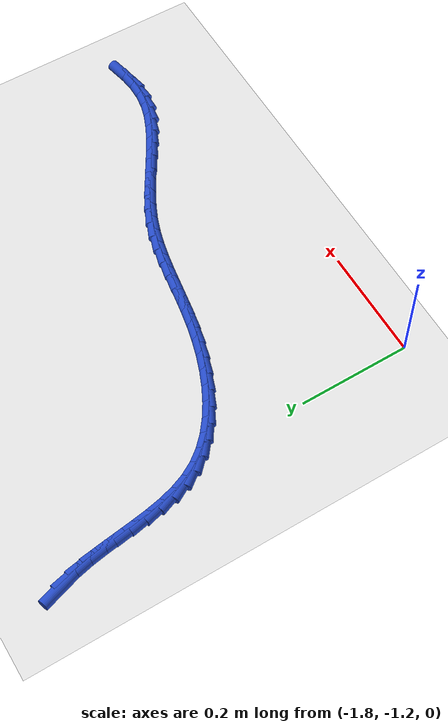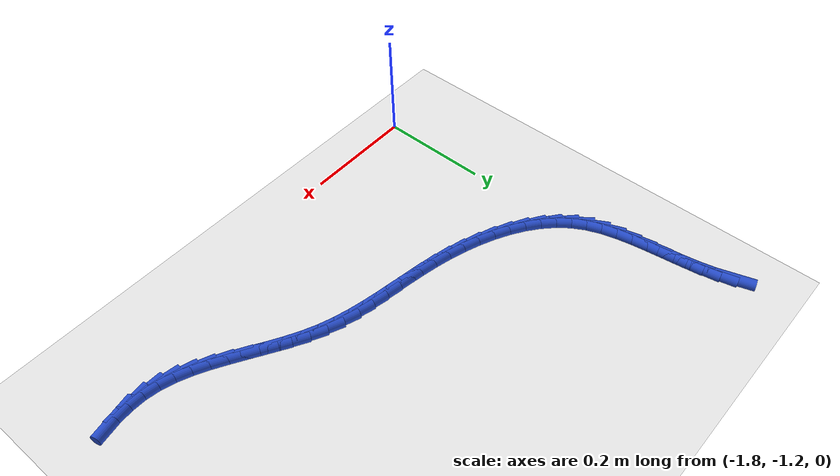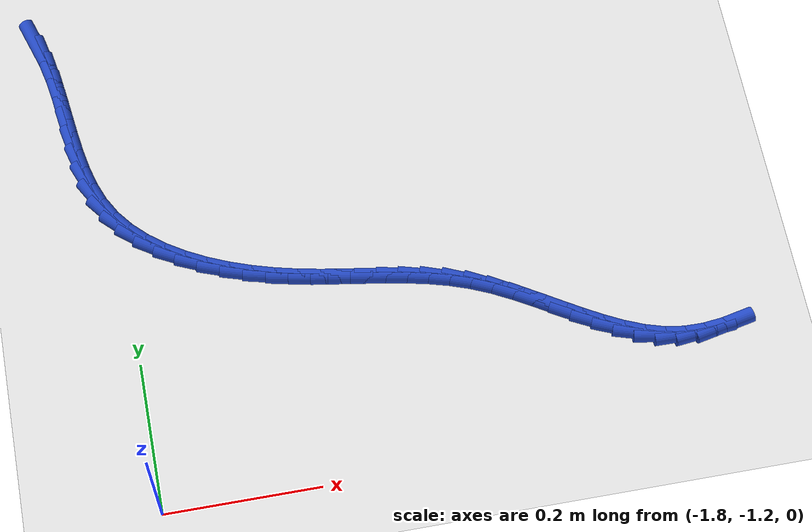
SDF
<sdf version="1.6">
 <world name="default">
  <model name="ground_plane">
   <static>1</static>
   <link name="link">
    <collision name="collision">
     <geometry><plane><normal>0 0 1</normal><size>100 100</size></plane></geometry>
     <surface><friction><ode><mu>100</mu><mu2>50</mu2></ode></friction></surface>
    </collision>
    <visual name="visual">
     <cast_shadows>0</cast_shadows>
     <geometry><plane><normal>0 0 1</normal><size>100 100</size></plane></geometry>
     <material>
      <script><uri>file://media/materials/scripts/gazebo.material</uri><name>Gazebo/WhiteGlow</name></script>
     </material>
    </visual>
   </link>
  </model>
  <model name="line">
   <link name="link_141">
    <pose>-1.8753388666711641 -0.521191746620722 0.01 0 1.57 -1.2629739022004454</pose>
    <collision name="collision">
     <geometry><cylinder><radius>0.01</radius><length>0.08</length></cylinder></geometry>
    </collision>
    <visual name="visual">
     <material>
      <script><name>Gazebo/Blue</name><uri>file://media/materials/scripts/gazebo.material</uri></script>
     </material>
     <geometry><cylinder><radius>0.01</radius><length>0.08</length></cylinder></geometry>
    </visual>
   </link>
   <link name="link_142">
    <pose>-1.8668825444255006 -0.5477899638681992 0.01 0 1.57 -1.3483405853613528</pose>
    <collision name="collision">
     <geometry><cylinder><radius>0.01</radius><length>0.08</length></cylinder></geometry>
    </collision>
    <visual name="visual">
     <material>
      <script><name>Gazebo/Blue</name><uri>file://media/materials/scripts/gazebo.material</uri></script>
     </material>
     <geometry><cylinder><radius>0.01</radius><length>0.08</length></cylinder></geometry>
    </visual>
   </link>
   <link name="link_143">
    <pose>-1.8606122428354461 -0.575510205309417 0.01 0 1.57 -1.40513259338551</pose>
    <collision name="collision">
     <geometry><cylinder><radius>0.01</radius><length>0.08</length></cylinder></geometry>
    </collision>
    <visual name="visual">
     <material>
      <script><name>Gazebo/Blue</name><uri>file://media/materials/scripts/gazebo.material</uri></script>
     </material>
     <geometry><cylinder><radius>0.01</radius><length>0.08</length></cylinder></geometry>
    </visual>
   </link>
   <link name="link_144">
    <pose>-1.8558516066946575 -0.6039835778646141 0.01 0 1.57 -1.4354799581638917</pose>
    <collision name="collision">
     <geometry><cylinder><radius>0.01</radius><length>0.08</length></cylinder></geometry>
    </collision>
    <visual name="visual">
     <material>
      <script><name>Gazebo/Blue</name><uri>file://media/materials/scripts/gazebo.material</uri></script>
     </material>
     <geometry><cylinder><radius>0.01</radius><length>0.08</length></cylinder></geometry>
    </visual>
   </link>
   <link name="link_145">
    <pose>-1.8519228020472938 -0.6328403664341098 0.01 0 1.57 -1.4407841777287467</pose>
    <collision name="collision">
     <geometry><cylinder><radius>0.01</radius><length>0.08</length></cylinder></geometry>
    </collision>
    <visual name="visual">
     <material>
      <script><name>Gazebo/Blue</name><uri>file://media/materials/scripts/gazebo.material</uri></script>
     </material>
     <geometry><cylinder><radius>0.01</radius><length>0.08</length></cylinder></geometry>
    </visual>
   </link>
   <link name="link_146">
    <pose>-1.848147994937515 -0.6617108559182231 0.01 0 1.57 -1.4211700017675006</pose>
    <collision name="collision">
     <geometry><cylinder><radius>0.01</radius><length>0.08</length></cylinder></geometry>
    </collision>
    <visual name="visual">
     <material>
      <script><name>Gazebo/Blue</name><uri>file://media/materials/scripts/gazebo.material</uri></script>
     </material>
     <geometry><cylinder><radius>0.01</radius><length>0.08</length></cylinder></geometry>
    </visual>
   </link>
   <link name="link_147">
    <pose>-1.8438493514094796 -0.6902253312172739 0.01 0 1.57 -1.3753889148628426</pose>
    <collision name="collision">
     <geometry><cylinder><radius>0.01</radius><length>0.08</length></cylinder></geometry>
    </collision>
    <visual name="visual">
     <material>
      <script><name>Gazebo/Blue</name><uri>file://media/materials/scripts/gazebo.material</uri></script>
     </material>
     <geometry><cylinder><radius>0.01</radius><length>0.08</length></cylinder></geometry>
    </visual>
   </link>
   <link name="link_148">
    <pose>-1.8383490375073477 -0.7180140772315795 0.01 0 1.57 -1.3010667277264085</pose>
    <collision name="collision">
     <geometry><cylinder><radius>0.01</radius><length>0.08</length></cylinder></geometry>
    </collision>
    <visual name="visual">
     <material>
      <script><name>Gazebo/Blue</name><uri>file://media/materials/scripts/gazebo.material</uri></script>
     </material>
     <geometry><cylinder><radius>0.01</radius><length>0.08</length></cylinder></geometry>
    </visual>
   </link>
   <link name="link_149">
    <pose>-1.8309692192752787 -0.7447073788614601 0.01 0 1.57 -1.1955667666219372</pose>
    <collision name="collision">
     <geometry><cylinder><radius>0.01</radius><length>0.08</length></cylinder></geometry>
    </collision>
    <visual name="visual">
     <material>
      <script><name>Gazebo/Blue</name><uri>file://media/materials/scripts/gazebo.material</uri></script>
     </material>
     <geometry><cylinder><radius>0.01</radius><length>0.08</length></cylinder></geometry>
    </visual>
   </link>
   <link name="link_150">
    <pose>-1.821032062757431 -0.7699355210072341 0.01 0 1.57 -1.0583558536519473</pose>
    <collision name="collision">
     <geometry><cylinder><radius>0.01</radius><length>0.08</length></cylinder></geometry>
    </collision>
    <visual name="visual">
     <material>
      <script><name>Gazebo/Blue</name><uri>file://media/materials/scripts/gazebo.material</uri></script>
     </material>
     <geometry><cylinder><radius>0.01</radius><length>0.08</length></cylinder></geometry>
    </visual>
   </link>
   <link name="link_151">
    <pose>-1.807869668354182 -0.7933325399651864 0.01 0 1.57 -0.9100896663687043</pose>
    <collision name="collision">
     <geometry><cylinder><radius>0.01</radius><length>0.08</length></cylinder></geometry>
    </collision>
    <visual name="visual">
     <material>
      <script><name>Gazebo/Blue</name><uri>file://media/materials/scripts/gazebo.material</uri></script>
     </material>
     <geometry><cylinder><radius>0.01</radius><length>0.08</length></cylinder></geometry>
    </visual>
   </link>
   <link name="link_152">
    <pose>-1.791261096418293 -0.8147012523456403 0.01 0 1.57 -0.7782124253226701</pose>
    <collision name="collision">
     <geometry><cylinder><radius>0.01</radius><length>0.08</length></cylinder></geometry>
    </collision>
    <visual name="visual">
     <material>
      <script><name>Gazebo/Blue</name><uri>file://media/materials/scripts/gazebo.material</uri></script>
     </material>
     <geometry><cylinder><radius>0.01</radius><length>0.08</length></cylinder></geometry>
    </visual>
   </link>
   <link name="link_153">
    <pose>-1.7716038468602682 -0.8340780089317515 0.01 0 1.57 -0.6644644143110363</pose>
    <collision name="collision">
     <geometry><cylinder><radius>0.01</radius><length>0.08</length></cylinder></geometry>
    </collision>
    <visual name="visual">
     <material>
      <script><name>Gazebo/Blue</name><uri>file://media/materials/scripts/gazebo.material</uri></script>
     </material>
     <geometry><cylinder><radius>0.01</radius><length>0.08</length></cylinder></geometry>
    </visual>
   </link>
   <link name="link_154">
    <pose>-1.7493407875839946 -0.851516292296962 0.01 0 1.57 -0.567005233301966</pose>
    <collision name="collision">
     <geometry><cylinder><radius>0.01</radius><length>0.08</length></cylinder></geometry>
    </collision>
    <visual name="visual">
     <material>
      <script><name>Gazebo/Blue</name><uri>file://media/materials/scripts/gazebo.material</uri></script>
     </material>
     <geometry><cylinder><radius>0.01</radius><length>0.08</length></cylinder></geometry>
    </visual>
   </link>
   <link name="link_155">
    <pose>-1.7249147864933554 -0.8670695850147132 0.01 0 1.57 -0.4832999331994907</pose>
    <collision name="collision">
     <geometry><cylinder><radius>0.01</radius><length>0.08</length></cylinder></geometry>
    </collision>
    <visual name="visual">
     <material>
      <script><name>Gazebo/Blue</name><uri>file://media/materials/scripts/gazebo.material</uri></script>
     </material>
     <geometry><cylinder><radius>0.01</radius><length>0.08</length></cylinder></geometry>
    </visual>
   </link>
   <link name="link_156">
    <pose>-1.6987687114922378 -0.8807913696584456 0.01 0 1.57 -0.4107587283921098</pose>
    <collision name="collision">
     <geometry><cylinder><radius>0.01</radius><length>0.08</length></cylinder></geometry>
    </collision>
    <visual name="visual">
     <material>
      <script><name>Gazebo/Blue</name><uri>file://media/materials/scripts/gazebo.material</uri></script>
     </material>
     <geometry><cylinder><radius>0.01</radius><length>0.08</length></cylinder></geometry>
    </visual>
   </link>
   <link name="link_157">
    <pose>-1.6713454304845277 -0.8927351288016014 0.01 0 1.57 -0.34701075725105635</pose>
    <collision name="collision">
     <geometry><cylinder><radius>0.01</radius><length>0.08</length></cylinder></geometry>
    </collision>
    <visual name="visual">
     <material>
      <script><name>Gazebo/Blue</name><uri>file://media/materials/scripts/gazebo.material</uri></script>
     </material>
     <geometry><cylinder><radius>0.01</radius><length>0.08</length></cylinder></geometry>
    </visual>
   </link>
   <link name="link_158">
    <pose>-1.6430878113741096 -0.9029543450176216 0.01 0 1.57 -0.28996478486423294</pose>
    <collision name="collision">
     <geometry><cylinder><radius>0.01</radius><length>0.08</length></cylinder></geometry>
    </collision>
    <visual name="visual">
     <material>
      <script><name>Gazebo/Blue</name><uri>file://media/materials/scripts/gazebo.material</uri></script>
     </material>
     <geometry><cylinder><radius>0.01</radius><length>0.08</length></cylinder></geometry>
    </visual>
   </link>
   <link name="link_159">
    <pose>-1.6144387220648693 -0.9115025008799478 0.01 0 1.57 -0.23829514689568126</pose>
    <collision name="collision">
     <geometry><cylinder><radius>0.01</radius><length>0.08</length></cylinder></geometry>
    </collision>
    <visual name="visual">
     <material>
      <script><name>Gazebo/Blue</name><uri>file://media/materials/scripts/gazebo.material</uri></script>
     </material>
     <geometry><cylinder><radius>0.01</radius><length>0.08</length></cylinder></geometry>
    </visual>
   </link>
   <link name="link_160">
    <pose>-1.5858183008581601 -0.9184547018237705 0.01 0 1.57 -0.19674590294767844</pose>
    <collision name="collision">
     <geometry><cylinder><radius>0.01</radius><length>0.08</length></cylinder></geometry>
    </collision>
    <visual name="visual">
     <material>
      <script><name>Gazebo/Blue</name><uri>file://media/materials/scripts/gazebo.material</uri></script>
     </material>
     <geometry><cylinder><radius>0.01</radius><length>0.08</length></cylinder></geometry>
    </visual>
   </link>
   <link name="link_161">
    <pose>-1.5574020797572843 -0.9241187493095636 0.01 0 1.57 -0.16955820822944997</pose>
    <collision name="collision">
     <geometry><cylinder><radius>0.01</radius><length>0.08</length></cylinder></geometry>
    </collision>
    <visual name="visual">
     <material>
      <script><name>Gazebo/Blue</name><uri>file://media/materials/scripts/gazebo.material</uri></script>
     </material>
     <geometry><cylinder><radius>0.01</radius><length>0.08</length></cylinder></geometry>
    </visual>
   </link>
   <link name="link_162">
    <pose>-1.529216625412719 -0.9289441567888019 0.01 0 1.57 -0.15758873950073543</pose>
    <collision name="collision">
     <geometry><cylinder><radius>0.01</radius><length>0.08</length></cylinder></geometry>
    </collision>
    <visual name="visual">
     <material>
      <script><name>Gazebo/Blue</name><uri>file://media/materials/scripts/gazebo.material</uri></script>
     </material>
     <geometry><cylinder><radius>0.01</radius><length>0.08</length></cylinder></geometry>
    </visual>
   </link>
   <link name="link_163">
    <pose>-1.5012863904838705 -0.9333824487704151 0.01 0 1.57 -0.16142607565670342</pose>
    <collision name="collision">
     <geometry><cylinder><radius>0.01</radius><length>0.08</length></cylinder></geometry>
    </collision>
    <visual name="visual">
     <material>
      <script><name>Gazebo/Blue</name><uri>file://media/materials/scripts/gazebo.material</uri></script>
     </material>
     <geometry><cylinder><radius>0.01</radius><length>0.08</length></cylinder></geometry>
    </visual>
   </link>
   <link name="link_164">
    <pose>-1.473635827630144 -0.9378851497633343 0.01 0 1.57 -0.18150093776053736</pose>
    <collision name="collision">
     <geometry><cylinder><radius>0.01</radius><length>0.08</length></cylinder></geometry>
    </collision>
    <visual name="visual">
     <material>
      <script><name>Gazebo/Blue</name><uri>file://media/materials/scripts/gazebo.material</uri></script>
     </material>
     <geometry><cylinder><radius>0.01</radius><length>0.08</length></cylinder></geometry>
    </visual>
   </link>
   <link name="link_165">
    <pose>-1.446289389510946 -0.94290378427649 0.01 0 1.57 -0.21803833912599985</pose>
    <collision name="collision">
     <geometry><cylinder><radius>0.01</radius><length>0.08</length></cylinder></geometry>
    </collision>
    <visual name="visual">
     <material>
      <script><name>Gazebo/Blue</name><uri>file://media/materials/scripts/gazebo.material</uri></script>
     </material>
     <geometry><cylinder><radius>0.01</radius><length>0.08</length></cylinder></geometry>
    </visual>
   </link>
   <link name="link_166">
    <pose>-1.419271528785682 -0.9488898768188128 0.01 0 1.57 -0.27088340275852996</pose>
    <collision name="collision">
     <geometry><cylinder><radius>0.01</radius><length>0.08</length></cylinder></geometry>
    </collision>
    <visual name="visual">
     <material>
      <script><name>Gazebo/Blue</name><uri>file://media/materials/scripts/gazebo.material</uri></script>
     </material>
     <geometry><cylinder><radius>0.01</radius><length>0.08</length></cylinder></geometry>
    </visual>
   </link>
   <link name="link_167">
    <pose>-1.3926066981137586 -0.9562949518992334 0.01 0 1.57 -0.3392146272042773</pose>
    <collision name="collision">
     <geometry><cylinder><radius>0.01</radius><length>0.08</length></cylinder></geometry>
    </collision>
    <visual name="visual">
     <material>
      <script><name>Gazebo/Blue</name><uri>file://media/materials/scripts/gazebo.material</uri></script>
     </material>
     <geometry><cylinder><radius>0.01</radius><length>0.08</length></cylinder></geometry>
    </visual>
   </link>
   <link name="link_168">
    <pose>-1.3663193501545814 -0.9655705340266826 0.01 0 1.57 -0.41904686413676157</pose>
    <collision name="collision">
     <geometry><cylinder><radius>0.01</radius><length>0.08</length></cylinder></geometry>
    </collision>
    <visual name="visual">
     <material>
      <script><name>Gazebo/Blue</name><uri>file://media/materials/scripts/gazebo.material</uri></script>
     </material>
     <geometry><cylinder><radius>0.01</radius><length>0.08</length></cylinder></geometry>
    </visual>
   </link>
   <link name="link_169">
    <pose>-1.3404281703280347 -0.9771032374775462 0.01 0 1.57 -0.48622641056981875</pose>
    <collision name="collision">
     <geometry><cylinder><radius>0.01</radius><length>0.08</length></cylinder></geometry>
    </collision>
    <visual name="visual">
     <material>
      <script><name>Gazebo/Blue</name><uri>file://media/materials/scripts/gazebo.material</uri></script>
     </material>
     <geometry><cylinder><radius>0.01</radius><length>0.08</length></cylinder></geometry>
    </visual>
   </link>
   <link name="link_170">
    <pose>-1.314891513330635 -0.9906006547416257 0.01 0 1.57 -0.5289659816643428</pose>
    <collision name="collision">
     <geometry><cylinder><radius>0.01</radius><length>0.08</length></cylinder></geometry>
    </collision>
    <visual name="visual">
     <material>
      <script><name>Gazebo/Blue</name><uri>file://media/materials/scripts/gazebo.material</uri></script>
     </material>
     <geometry><cylinder><radius>0.01</radius><length>0.08</length></cylinder></geometry>
    </visual>
   </link>
   <link name="link_171">
    <pose>-1.2896317783006506 -1.0053656988015442 0.01 0 1.57 -0.548990956939324</pose>
    <collision name="collision">
     <geometry><cylinder><radius>0.01</radius><length>0.08</length></cylinder></geometry>
    </collision>
    <visual name="visual">
     <material>
      <script><name>Gazebo/Blue</name><uri>file://media/materials/scripts/gazebo.material</uri></script>
     </material>
     <geometry><cylinder><radius>0.01</radius><length>0.08</length></cylinder></geometry>
    </visual>
   </link>
   <link name="link_172">
    <pose>-1.2645708853641597 -1.0206958913617532 0.01 0 1.57 -0.5471373153917388</pose>
    <collision name="collision">
     <geometry><cylinder><radius>0.01</radius><length>0.08</length></cylinder></geometry>
    </collision>
    <visual name="visual">
     <material>
      <script><name>Gazebo/Blue</name><uri>file://media/materials/scripts/gazebo.material</uri></script>
     </material>
     <geometry><cylinder><radius>0.01</radius><length>0.08</length></cylinder></geometry>
    </visual>
   </link>
   <link name="link_173">
    <pose>-1.2396307546472414 -1.0358887541267037 0.01 0 1.57 -0.5229510622382169</pose>
    <collision name="collision">
     <geometry><cylinder><radius>0.01</radius><length>0.08</length></cylinder></geometry>
    </collision>
    <visual name="visual">
     <material>
      <script><name>Gazebo/Blue</name><uri>file://media/materials/scripts/gazebo.material</uri></script>
     </material>
     <geometry><cylinder><radius>0.01</radius><length>0.08</length></cylinder></geometry>
    </visual>
   </link>
   <link name="link_174">
    <pose>-1.2147333062759733 -1.0502418088008458 0.01 0 1.57 -0.47463519445678454</pose>
    <collision name="collision">
     <geometry><cylinder><radius>0.01</radius><length>0.08</length></cylinder></geometry>
    </collision>
    <visual name="visual">
     <material>
      <script><name>Gazebo/Blue</name><uri>file://media/materials/scripts/gazebo.material</uri></script>
     </material>
     <geometry><cylinder><radius>0.01</radius><length>0.08</length></cylinder></geometry>
    </visual>
   </link>
   <link name="link_175">
    <pose>-1.189800460376435 -1.0630525770886317 0.01 0 1.57 -0.39920673625578756</pose>
    <collision name="collision">
     <geometry><cylinder><radius>0.01</radius><length>0.08</length></cylinder></geometry>
    </collision>
    <visual name="visual">
     <material>
      <script><name>Gazebo/Blue</name><uri>file://media/materials/scripts/gazebo.material</uri></script>
     </material>
     <geometry><cylinder><radius>0.01</radius><length>0.08</length></cylinder></geometry>
    </visual>
   </link>
   <link name="link_176">
    <pose>-1.1647541370747048 -1.0736185806945113 0.01 0 1.57 -0.29317882812643176</pose>
    <collision name="collision">
     <geometry><cylinder><radius>0.01</radius><length>0.08</length></cylinder></geometry>
    </collision>
    <visual name="visual">
     <material>
      <script><name>Gazebo/Blue</name><uri>file://media/materials/scripts/gazebo.material</uri></script>
     </material>
     <geometry><cylinder><radius>0.01</radius><length>0.08</length></cylinder></geometry>
    </visual>
   </link>
   <link name="link_177">
    <pose>-1.1395162564968608 -1.0812373413229366 0.01 0 1.57 -0.1559594520704708</pose>
    <collision name="collision">
     <geometry><cylinder><radius>0.01</radius><length>0.08</length></cylinder></geometry>
    </collision>
    <visual name="visual">
     <material>
      <script><name>Gazebo/Blue</name><uri>file://media/materials/scripts/gazebo.material</uri></script>
     </material>
     <geometry><cylinder><radius>0.01</radius><length>0.08</length></cylinder></geometry>
    </visual>
   </link>
   <link name="link_178">
    <pose>-1.1140121993532637 -1.0852475064969074 0.01 0 1.57 -0.014081715184242088</pose>
    <collision name="collision">
     <geometry><cylinder><radius>0.01</radius><length>0.08</length></cylinder></geometry>
    </collision>
    <visual name="visual">
     <material>
      <script><name>Gazebo/Blue</name><uri>file://media/materials/scripts/gazebo.material</uri></script>
     </material>
     <geometry><cylinder><radius>0.01</radius><length>0.08</length></cylinder></geometry>
    </visual>
   </link>
   <link name="link_179">
    <pose>-1.0882197701887033 -1.085610732147204 0.01 0 1.57 0.10848541772376805</pose>
    <collision name="collision">
     <geometry><cylinder><radius>0.01</radius><length>0.08</length></cylinder></geometry>
    </collision>
    <visual name="visual">
     <material>
      <script><name>Gazebo/Blue</name><uri>file://media/materials/scripts/gazebo.material</uri></script>
     </material>
     <geometry><cylinder><radius>0.01</radius><length>0.08</length></cylinder></geometry>
    </visual>
   </link>
   <link name="link_180">
    <pose>-1.0621574610543358 -1.0827722072928037 0.01 0 1.57 0.20905753821762027</pose>
    <collision name="collision">
     <geometry><cylinder><radius>0.01</radius><length>0.08</length></cylinder></geometry>
    </collision>
    <visual name="visual">
     <material>
      <script><name>Gazebo/Blue</name><uri>file://media/materials/scripts/gazebo.material</uri></script>
     </material>
     <geometry><cylinder><radius>0.01</radius><length>0.08</length></cylinder></geometry>
    </visual>
   </link>
  </model>
 </world>
</sdf>
